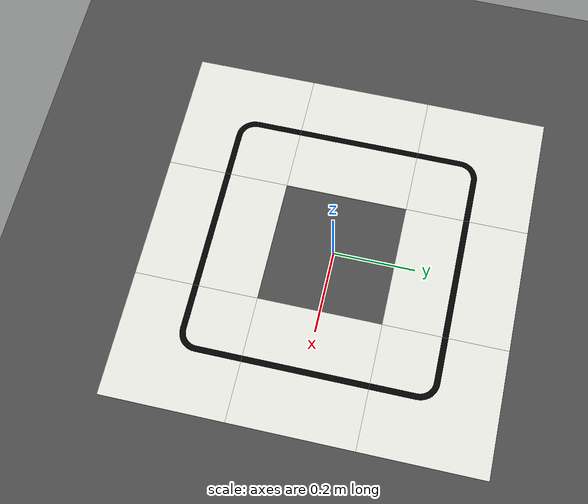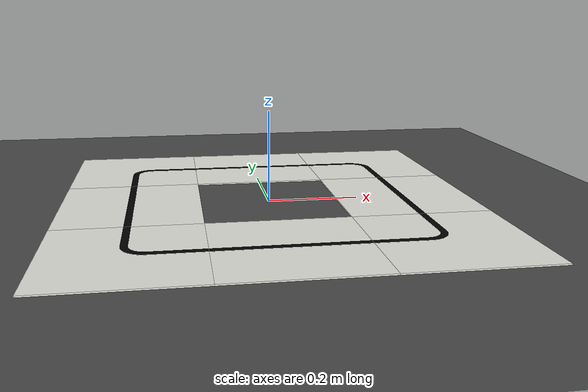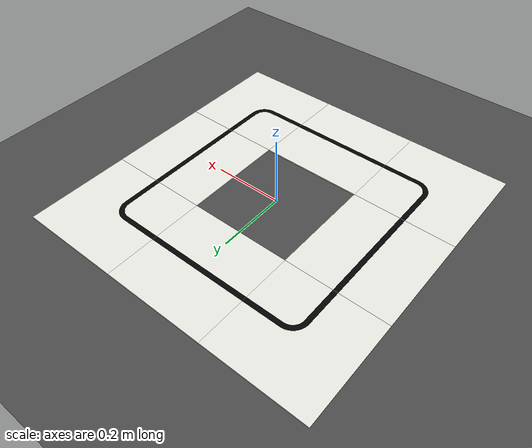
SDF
<sdf version='1.7'>
  <world name='default'>
    <light name='sun' type='directional'>
      <cast_shadows>0</cast_shadows>
      <pose>0 0 5 0 -0 0</pose>
      <diffuse>1 1 1 1</diffuse>
      <specular>0.3 0.3 0.3 1</specular>
      <attenuation>
        <range>1000</range>
        <constant>0.9</constant>
        <linear>0.01</linear>
        <quadratic>0.001</quadratic>
      </attenuation>
      <direction>0 0 -1</direction>
    </light>
    <light name='overhead_light' type='point'>
      <cast_shadows>0</cast_shadows>
      <pose>0 0 2.5 0 0 0</pose>
      <diffuse>1 1 1 1</diffuse>
      <specular>0.2 0.2 0.2 1</specular>
      <attenuation>
        <range>20</range>
        <constant>0.5</constant>
        <linear>0.05</linear>
        <quadratic>0.005</quadratic>
      </attenuation>
    </light>
    <model name='ground_plane'>
      <static>1</static>
      <link name='link'>
        <collision name='collision'>
          <geometry>
            <plane>
              <normal>0 0 1</normal>
              <size>100 100</size>
            </plane>
          </geometry>
          <surface>
            <contact>
              <collide_bitmask>65535</collide_bitmask>
              <ode/>
            </contact>
            <friction>
              <ode>
                <mu>100</mu>
                <mu2>50</mu2>
              </ode>
              <torsional><ode/></torsional>
            </friction>
            <bounce/>
          </surface>
          <max_contacts>10</max_contacts>
        </collision>
        <visual name='visual'>
          <cast_shadows>0</cast_shadows>
          <geometry>
            <plane>
              <normal>0 0 1</normal>
              <size>100 100</size>
            </plane>
          </geometry>
          <material>
            <script>
              <uri>file://media/materials/scripts/gazebo.material</uri>
              <name>Gazebo/DarkGrey</name>
            </script>
          </material>
        </visual>
        <self_collide>0</self_collide>
        <enable_wind>0</enable_wind>
        <kinematic>0</kinematic>
      </link>
    </model>
    <gravity>0 0 -9.8</gravity>
    <magnetic_field>6e-06 2.3e-05 -4.2e-05</magnetic_field>
    <atmosphere type='adiabatic'/>
    <physics type='ode'>
      <max_step_size>0.001</max_step_size>
      <real_time_factor>1</real_time_factor>
      <real_time_update_rate>1000</real_time_update_rate>
    </physics>
    <scene>
      <ambient>0.6 0.6 0.6 1</ambient>
      <background>0.7 0.7 0.7 1</background>
      <shadows>0</shadows>
    </scene>
    <audio>
      <device>none</device>
    </audio>
    <wind/>
    <spherical_coordinates>
      <surface_model>EARTH_WGS84</surface_model>
      <latitude_deg>0</latitude_deg>
      <longitude_deg>0</longitude_deg>
      <elevation>0</elevation>
      <heading_deg>0</heading_deg>
    </spherical_coordinates>

    <model name='tile_reta_top'>
      <static>1</static>
      <link name='link'>
        <visual name='visual'>
          <pose>0 0 0 1.5708 -0 0</pose>
          <geometry>
            <mesh>
              <uri>/workspace/tiles/tile-reta/meshes/tile_reta.dae</uri>
              <scale>1 1 1</scale>
            </mesh>
          </geometry>
        </visual>
        <collision name='collision'>
          <geometry>
            <box>
              <size>0.30 0.30 0.003</size>
            </box>
          </geometry>
          <max_contacts>10</max_contacts>
          <surface>
            <contact><ode/></contact>
            <bounce/>
            <friction>
              <torsional><ode/></torsional>
              <ode/>
            </friction>
          </surface>
        </collision>
        <self_collide>0</self_collide>
        <enable_wind>0</enable_wind>
        <kinematic>0</kinematic>
      </link>
      <pose>-0.1500 0.4500 0.0010 0 0 0.000000</pose>
    </model>

    <model name='tile_curva_tr'>
      <static>1</static>
      <link name='link'>
        <visual name='visual'>
          <pose>0 0 0 1.5708 -0 0</pose>
          <geometry>
            <mesh>
              <uri>/workspace/tiles/tile-curva/meshes/tile_curva.dae</uri>
              <scale>1 1 1</scale>
            </mesh>
          </geometry>
        </visual>
        <collision name='collision'>
          <geometry>
            <box>
              <size>0.30 0.30 0.003</size>
            </box>
          </geometry>
          <max_contacts>10</max_contacts>
          <surface>
            <contact><ode/></contact>
            <bounce/>
            <friction>
              <torsional><ode/></torsional>
              <ode/>
            </friction>
          </surface>
        </collision>
        <self_collide>0</self_collide>
        <enable_wind>0</enable_wind>
        <kinematic>0</kinematic>
      </link>
      <pose>0.1500 0.4500 0.0010 0 0 0.000000</pose>
    </model>

    <model name='tile_reta_right'>
      <static>1</static>
      <link name='link'>
        <visual name='visual'>
          <pose>0 0 0 1.5708 -0 0</pose>
          <geometry>
            <mesh>
              <uri>/workspace/tiles/tile-reta/meshes/tile_reta.dae</uri>
              <scale>1 1 1</scale>
            </mesh>
          </geometry>
        </visual>
        <collision name='collision'>
          <geometry>
            <box>
              <size>0.30 0.30 0.003</size>
            </box>
          </geometry>
          <max_contacts>10</max_contacts>
          <surface>
            <contact><ode/></contact>
            <bounce/>
            <friction>
              <torsional><ode/></torsional>
              <ode/>
            </friction>
          </surface>
        </collision>
        <self_collide>0</self_collide>
        <enable_wind>0</enable_wind>
        <kinematic>0</kinematic>
      </link>
      <pose>0.4500 0.1500 0.0010 0 0 -1.570796</pose>
    </model>

    <model name='tile_curva_br'>
      <static>1</static>
      <link name='link'>
        <visual name='visual'>
          <pose>0 0 0 1.5708 -0 0</pose>
          <geometry>
            <mesh>
              <uri>/workspace/tiles/tile-curva/meshes/tile_curva.dae</uri>
              <scale>1 1 1</scale>
            </mesh>
          </geometry>
        </visual>
        <collision name='collision'>
          <geometry>
            <box>
              <size>0.30 0.30 0.003</size>
            </box>
          </geometry>
          <max_contacts>10</max_contacts>
          <surface>
            <contact><ode/></contact>
            <bounce/>
            <friction>
              <torsional><ode/></torsional>
              <ode/>
            </friction>
          </surface>
        </collision>
        <self_collide>0</self_collide>
        <enable_wind>0</enable_wind>
        <kinematic>0</kinematic>
      </link>
      <pose>0.4500 -0.1500 0.0010 0 0 -1.570796</pose>
    </model>

    <model name='tile_reta_bottom'>
      <static>1</static>
      <link name='link'>
        <visual name='visual'>
          <pose>0 0 0 1.5708 -0 0</pose>
          <geometry>
            <mesh>
              <uri>/workspace/tiles/tile-reta/meshes/tile_reta.dae</uri>
              <scale>1 1 1</scale>
            </mesh>
          </geometry>
        </visual>
        <collision name='collision'>
          <geometry>
            <box>
              <size>0.30 0.30 0.003</size>
            </box>
          </geometry>
          <max_contacts>10</max_contacts>
          <surface>
            <contact><ode/></contact>
            <bounce/>
            <friction>
              <torsional><ode/></torsional>
              <ode/>
            </friction>
          </surface>
        </collision>
        <self_collide>0</self_collide>
        <enable_wind>0</enable_wind>
        <kinematic>0</kinematic>
      </link>
      <pose>0.1500 -0.4500 0.0010 0 0 3.141593</pose>
    </model>

    <model name='tile_curva_bl'>
      <static>1</static>
      <link name='link'>
        <visual name='visual'>
          <pose>0 0 0 1.5708 -0 0</pose>
          <geometry>
            <mesh>
              <uri>/workspace/tiles/tile-curva/meshes/tile_curva.dae</uri>
              <scale>1 1 1</scale>
            </mesh>
          </geometry>
        </visual>
        <collision name='collision'>
          <geometry>
            <box>
              <size>0.30 0.30 0.003</size>
            </box>
          </geometry>
          <max_contacts>10</max_contacts>
          <surface>
            <contact><ode/></contact>
            <bounce/>
            <friction>
              <torsional><ode/></torsional>
              <ode/>
            </friction>
          </surface>
        </collision>
        <self_collide>0</self_collide>
        <enable_wind>0</enable_wind>
        <kinematic>0</kinematic>
      </link>
      <pose>-0.1500 -0.4500 0.0010 0 0 3.141593</pose>
    </model>

    <model name='tile_reta_left'>
      <static>1</static>
      <link name='link'>
        <visual name='visual'>
          <pose>0 0 0 1.5708 -0 0</pose>
          <geometry>
            <mesh>
              <uri>/workspace/tiles/tile-reta/meshes/tile_reta.dae</uri>
              <scale>1 1 1</scale>
            </mesh>
          </geometry>
        </visual>
        <collision name='collision'>
          <geometry>
            <box>
              <size>0.30 0.30 0.003</size>
            </box>
          </geometry>
          <max_contacts>10</max_contacts>
          <surface>
            <contact><ode/></contact>
            <bounce/>
            <friction>
              <torsional><ode/></torsional>
              <ode/>
            </friction>
          </surface>
        </collision>
        <self_collide>0</self_collide>
        <enable_wind>0</enable_wind>
        <kinematic>0</kinematic>
      </link>
      <pose>-0.4500 -0.1500 0.0010 0 0 1.570796</pose>
    </model>

    <model name='tile_curva_tl'>
      <static>1</static>
      <link name='link'>
        <visual name='visual'>
          <pose>0 0 0 1.5708 -0 0</pose>
          <geometry>
            <mesh>
              <uri>/workspace/tiles/tile-curva/meshes/tile_curva.dae</uri>
              <scale>1 1 1</scale>
            </mesh>
          </geometry>
        </visual>
        <collision name='collision'>
          <geometry>
            <box>
              <size>0.30 0.30 0.003</size>
            </box>
          </geometry>
          <max_contacts>10</max_contacts>
          <surface>
            <contact><ode/></contact>
            <bounce/>
            <friction>
              <torsional><ode/></torsional>
              <ode/>
            </friction>
          </surface>
        </collision>
        <self_collide>0</self_collide>
        <enable_wind>0</enable_wind>
        <kinematic>0</kinematic>
      </link>
      <pose>-0.4500 0.1500 0.0010 0 0 1.570796</pose>
    </model>

    <gui fullscreen='0'>
      <camera name='user_camera'>
        <pose>0.0 -0.2 2.2 0 1.570796 1.570796</pose>
        <view_controller>orbit</view_controller>
        <projection_type>perspective</projection_type>
      </camera>
    </gui>
  </world>
</sdf>
